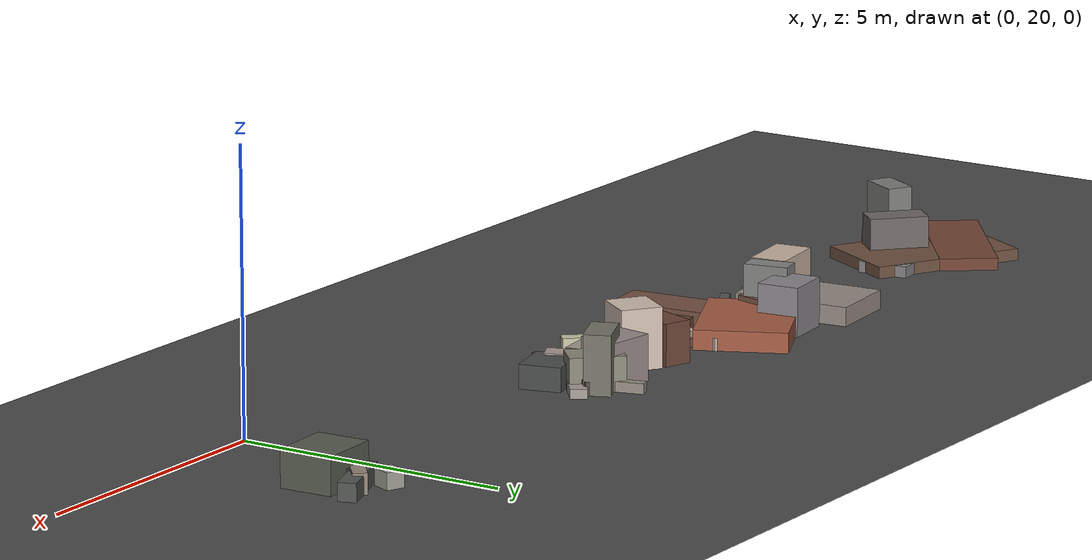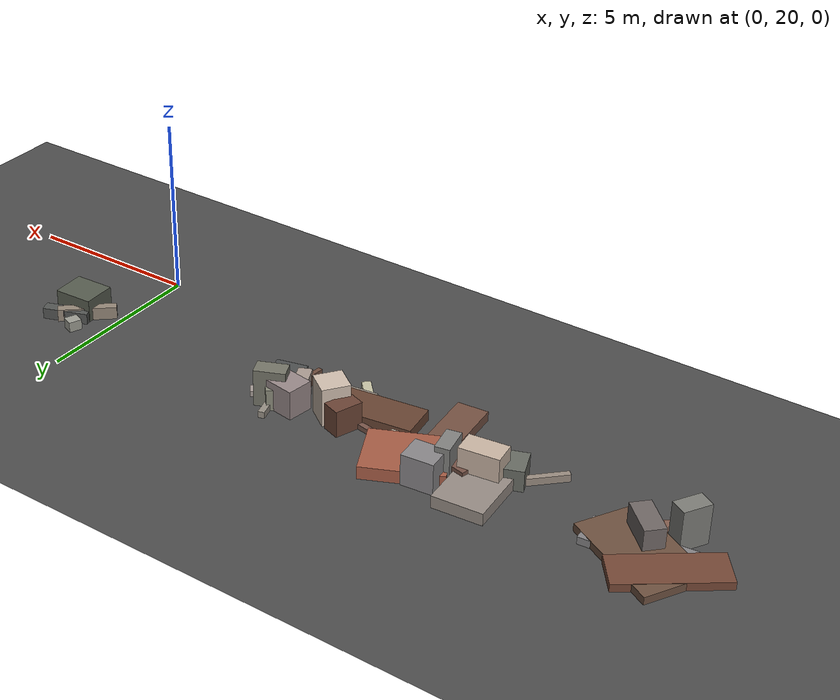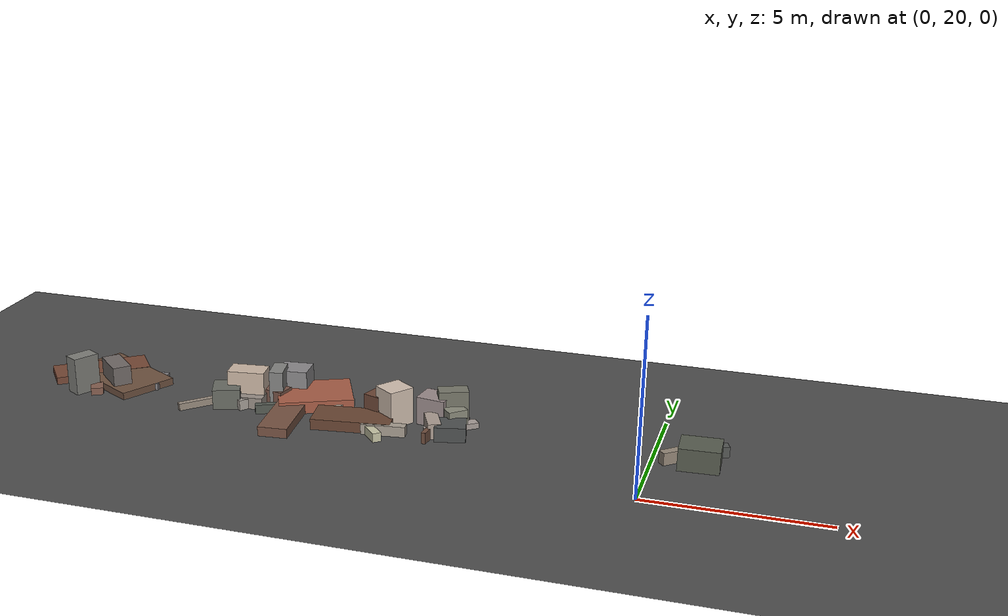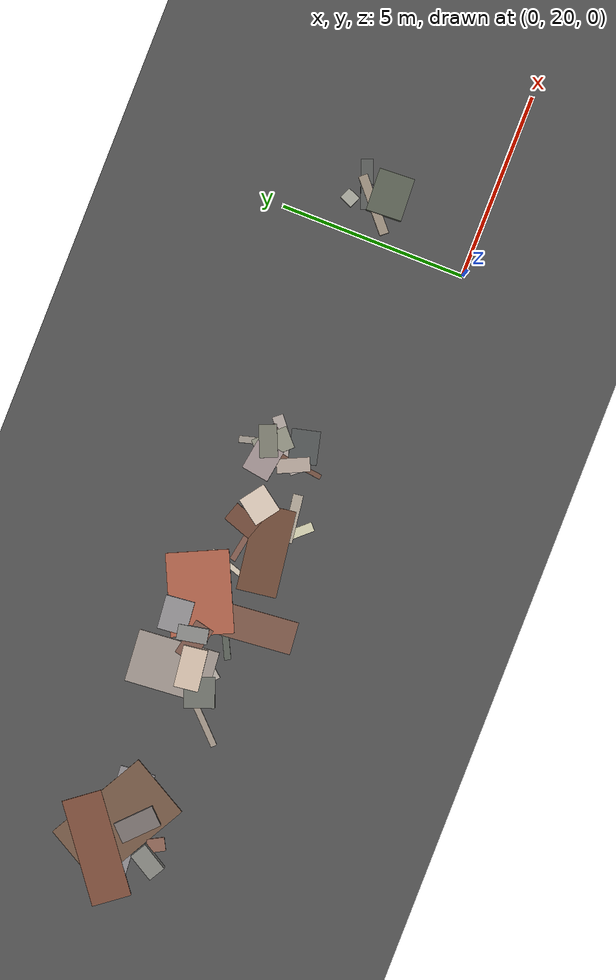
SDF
<sdf version="1.6">
 <world name="navitas_arena">
  <model name="ground_plane">
   <static>true</static>
   <link name="link">
    <collision name="collision">
     <geometry><plane><normal>0 0 1</normal><size>400 400</size></plane></geometry>
     <surface><friction><ode><mu>0.800</mu><mu2>0.800</mu2></ode></friction></surface>
    </collision>
    <visual name="visual">
     <cast_shadows>false</cast_shadows>
     <geometry><plane><normal>0 0 1</normal><size>400 400</size></plane></geometry>
     <material>
      <specular>0.04 0.04 0.04 1</specular>
      <script>
       <uri>file://media/materials/scripts/navitas_asphalt.material</uri>
       <name>Navitas/RealArenaAsphalt</name>
      </script>
     </material>
    </visual>
   </link>
  </model>
  <model name="deb_orta_61">
   <static>true</static>
   <pose>-16.905 22.829 0.000 0 0 0</pose>
   <link name="link">
    <collision name="col_0">
     <pose>-0.242 -0.727 0.566 0.000 0.000 -0.526</pose>
     <geometry><box><size>0.483 0.795 1.131</size></box></geometry>
    </collision>
    <visual name="vis_0">
     <pose>-0.242 -0.727 0.566 0.000 0.000 -0.526</pose>
     <geometry><box><size>0.483 0.795 1.131</size></box></geometry>
     <material>
      <ambient>0.45 0.45 0.43 1</ambient>
      <diffuse>0.49 0.49 0.47 1</diffuse>
      <specular>0.05 0.05 0.045 1</specular>
     </material>
    </visual>
    <collision name="col_1">
     <pose>0.409 0.390 0.108 0.000 0.000 -0.504</pose>
     <geometry><box><size>2.920 1.769 0.215</size></box></geometry>
    </collision>
    <visual name="vis_1">
     <pose>0.409 0.390 0.108 0.000 0.000 -0.504</pose>
     <geometry><box><size>2.920 1.769 0.215</size></box></geometry>
     <material>
      <ambient>0.40 0.30 0.24 1</ambient>
      <diffuse>0.43 0.32 0.25 1</diffuse>
      <specular>0.05 0.05 0.045 1</specular>
     </material>
    </visual>
    <collision name="col_2">
     <pose>0.378 0.253 0.104 0.000 0.000 0.080</pose>
     <geometry><box><size>2.951 0.940 0.208</size></box></geometry>
    </collision>
    <visual name="vis_2">
     <pose>0.378 0.253 0.104 0.000 0.000 0.080</pose>
     <geometry><box><size>2.951 0.940 0.208</size></box></geometry>
     <material>
      <ambient>0.48 0.47 0.48 1</ambient>
      <diffuse>0.52 0.51 0.52 1</diffuse>
      <specular>0.05 0.05 0.045 1</specular>
     </material>
    </visual>
    <collision name="col_3">
     <pose>0.208 -0.774 0.108 0.000 0.000 0.500</pose>
     <geometry><box><size>0.355 0.468 0.216</size></box></geometry>
    </collision>
    <visual name="vis_3">
     <pose>0.208 -0.774 0.108 0.000 0.000 0.500</pose>
     <geometry><box><size>0.355 0.468 0.216</size></box></geometry>
     <material>
      <ambient>0.48 0.34 0.29 1</ambient>
      <diffuse>0.52 0.37 0.31 1</diffuse>
      <specular>0.05 0.05 0.045 1</specular>
     </material>
    </visual>
    <collision name="col_4">
     <pose>-0.429 0.641 0.111 0.000 0.000 0.652</pose>
     <geometry><box><size>2.846 1.058 0.222</size></box></geometry>
    </collision>
    <visual name="vis_4">
     <pose>-0.429 0.641 0.111 0.000 0.000 0.652</pose>
     <geometry><box><size>2.846 1.058 0.222</size></box></geometry>
     <material>
      <ambient>0.43 0.26 0.19 1</ambient>
      <diffuse>0.46 0.28 0.21 1</diffuse>
      <specular>0.05 0.05 0.045 1</specular>
     </material>
    </visual>
    <collision name="col_5">
     <pose>0.552 -0.127 0.395 0.000 0.000 -0.765</pose>
     <geometry><box><size>1.095 0.554 0.790</size></box></geometry>
    </collision>
    <visual name="vis_5">
     <pose>0.552 -0.127 0.395 0.000 0.000 -0.765</pose>
     <geometry><box><size>1.095 0.554 0.790</size></box></geometry>
     <material>
      <ambient>0.41 0.38 0.37 1</ambient>
      <diffuse>0.44 0.41 0.40 1</diffuse>
      <specular>0.05 0.05 0.045 1</specular>
     </material>
    </visual>
   </link>
  </model>
  <model name="deb_orta_65">
   <static>true</static>
   <pose>-7.894 22.373 0.000 0 0 0</pose>
   <link name="link">
    <collision name="col_0">
     <pose>-0.116 0.642 0.380 0.000 0.000 2.809</pose>
     <geometry><box><size>0.522 0.803 0.759</size></box></geometry>
    </collision>
    <visual name="vis_0">
     <pose>-0.116 0.642 0.380 0.000 0.000 2.809</pose>
     <geometry><box><size>0.522 0.803 0.759</size></box></geometry>
     <material>
      <ambient>0.39 0.25 0.19 1</ambient>
      <diffuse>0.42 0.27 0.21 1</diffuse>
      <specular>0.05 0.05 0.045 1</specular>
     </material>
    </visual>
    <collision name="col_1">
     <pose>-0.011 -0.376 0.104 0.000 0.000 2.477</pose>
     <geometry><box><size>0.285 0.370 0.209</size></box></geometry>
    </collision>
    <visual name="vis_1">
     <pose>-0.011 -0.376 0.104 0.000 0.000 2.477</pose>
     <geometry><box><size>0.285 0.370 0.209</size></box></geometry>
     <material>
      <ambient>0.53 0.53 0.49 1</ambient>
      <diffuse>0.57 0.57 0.53 1</diffuse>
      <specular>0.05 0.05 0.045 1</specular>
     </material>
    </visual>
    <collision name="col_2">
     <pose>0.406 -0.543 0.154 0.000 0.000 3.275</pose>
     <geometry><box><size>1.274 0.270 0.307</size></box></geometry>
    </collision>
    <visual name="vis_2">
     <pose>0.406 -0.543 0.154 0.000 0.000 3.275</pose>
     <geometry><box><size>1.274 0.270 0.307</size></box></geometry>
     <material>
      <ambient>0.60 0.56 0.51 1</ambient>
      <diffuse>0.65 0.61 0.56 1</diffuse>
      <specular>0.05 0.05 0.045 1</specular>
     </material>
    </visual>
    <collision name="col_3">
     <pose>-0.615 -0.205 0.159 0.000 0.000 3.279</pose>
     <geometry><box><size>2.307 1.064 0.317</size></box></geometry>
    </collision>
    <visual name="vis_3">
     <pose>-0.615 -0.205 0.159 0.000 0.000 3.279</pose>
     <geometry><box><size>2.307 1.064 0.317</size></box></geometry>
     <material>
      <ambient>0.38 0.25 0.18 1</ambient>
      <diffuse>0.41 0.27 0.20 1</diffuse>
      <specular>0.05 0.05 0.045 1</specular>
     </material>
    </visual>
    <collision name="col_4">
     <pose>-0.248 0.364 0.073 0.000 0.000 2.965</pose>
     <geometry><box><size>1.869 0.160 0.146</size></box></geometry>
    </collision>
    <visual name="vis_4">
     <pose>-0.248 0.364 0.073 0.000 0.000 2.965</pose>
     <geometry><box><size>1.869 0.160 0.146</size></box></geometry>
     <material>
      <ambient>0.45 0.31 0.27 1</ambient>
      <diffuse>0.48 0.34 0.29 1</diffuse>
      <specular>0.05 0.05 0.045 1</specular>
     </material>
    </visual>
    <collision name="col_5">
     <pose>-0.152 -0.496 0.134 0.000 0.000 2.307</pose>
     <geometry><box><size>1.655 0.247 0.268</size></box></geometry>
    </collision>
    <visual name="vis_5">
     <pose>-0.152 -0.496 0.134 0.000 0.000 2.307</pose>
     <geometry><box><size>1.655 0.247 0.268</size></box></geometry>
     <material>
      <ambient>0.73 0.72 0.61 1</ambient>
      <diffuse>0.78 0.77 0.65 1</diffuse>
      <specular>0.05 0.05 0.045 1</specular>
     </material>
    </visual>
    <collision name="col_6">
     <pose>0.426 0.382 0.543 0.000 0.000 2.516</pose>
     <geometry><box><size>0.753 0.788 1.087</size></box></geometry>
    </collision>
    <visual name="vis_6">
     <pose>0.426 0.382 0.543 0.000 0.000 2.516</pose>
     <geometry><box><size>0.753 0.788 1.087</size></box></geometry>
     <material>
      <ambient>0.76 0.70 0.64 1</ambient>
      <diffuse>0.82 0.75 0.69 1</diffuse>
      <specular>0.05 0.05 0.045 1</specular>
     </material>
    </visual>
   </link>
  </model>
  <model name="deb_orta_122">
   <static>true</static>
   <pose>-5.844 22.735 0.000 0 0 0</pose>
   <link name="link">
    <collision name="col_0">
     <pose>0.090 -0.065 0.085 0.000 0.000 0.679</pose>
     <geometry><box><size>1.591 0.301 0.170</size></box></geometry>
    </collision>
    <visual name="vis_0">
     <pose>0.090 -0.065 0.085 0.000 0.000 0.679</pose>
     <geometry><box><size>1.591 0.301 0.170</size></box></geometry>
     <material>
      <ambient>0.60 0.56 0.55 1</ambient>
      <diffuse>0.65 0.61 0.59 1</diffuse>
      <specular>0.05 0.05 0.045 1</specular>
     </material>
    </visual>
    <collision name="col_1">
     <pose>0.314 0.329 0.121 0.000 0.000 0.918</pose>
     <geometry><box><size>0.391 0.182 0.242</size></box></geometry>
    </collision>
    <visual name="vis_1">
     <pose>0.314 0.329 0.121 0.000 0.000 0.918</pose>
     <geometry><box><size>0.391 0.182 0.242</size></box></geometry>
     <material>
      <ambient>0.32 0.27 0.27 1</ambient>
      <diffuse>0.35 0.30 0.29 1</diffuse>
      <specular>0.05 0.05 0.045 1</specular>
     </material>
    </visual>
    <collision name="col_2">
     <pose>-0.275 -0.347 0.167 0.000 0.000 1.448</pose>
     <geometry><box><size>1.707 0.131 0.334</size></box></geometry>
    </collision>
    <visual name="vis_2">
     <pose>-0.275 -0.347 0.167 0.000 0.000 1.448</pose>
     <geometry><box><size>1.707 0.131 0.334</size></box></geometry>
     <material>
      <ambient>0.40 0.27 0.22 1</ambient>
      <diffuse>0.43 0.30 0.24 1</diffuse>
      <specular>0.05 0.05 0.045 1</specular>
     </material>
    </visual>
    <collision name="col_3">
     <pose>-0.019 0.276 0.309 0.000 0.000 0.751</pose>
     <geometry><box><size>0.597 0.978 0.617</size></box></geometry>
    </collision>
    <visual name="vis_3">
     <pose>-0.019 0.276 0.309 0.000 0.000 0.751</pose>
     <geometry><box><size>0.597 0.978 0.617</size></box></geometry>
     <material>
      <ambient>0.50 0.50 0.45 1</ambient>
      <diffuse>0.54 0.54 0.48 1</diffuse>
      <specular>0.05 0.05 0.045 1</specular>
     </material>
    </visual>
    <collision name="col_4">
     <pose>-0.348 -0.418 0.230 0.000 0.000 2.004</pose>
     <geometry><box><size>0.878 0.378 0.459</size></box></geometry>
    </collision>
    <visual name="vis_4">
     <pose>-0.348 -0.418 0.230 0.000 0.000 2.004</pose>
     <geometry><box><size>0.878 0.378 0.459</size></box></geometry>
     <material>
      <ambient>0.62 0.57 0.52 1</ambient>
      <diffuse>0.67 0.61 0.57 1</diffuse>
      <specular>0.05 0.05 0.045 1</specular>
     </material>
    </visual>
    <collision name="col_5">
     <pose>-0.004 0.366 0.092 0.000 0.000 1.836</pose>
     <geometry><box><size>1.633 0.178 0.185</size></box></geometry>
    </collision>
    <visual name="vis_5">
     <pose>-0.004 0.366 0.092 0.000 0.000 1.836</pose>
     <geometry><box><size>1.633 0.178 0.185</size></box></geometry>
     <material>
      <ambient>0.54 0.52 0.48 1</ambient>
      <diffuse>0.59 0.56 0.52 1</diffuse>
      <specular>0.05 0.05 0.045 1</specular>
     </material>
    </visual>
    <collision name="col_6">
     <pose>0.001 0.416 0.530 0.000 0.000 1.980</pose>
     <geometry><box><size>0.476 0.860 1.061</size></box></geometry>
    </collision>
    <visual name="vis_6">
     <pose>0.001 0.416 0.530 0.000 0.000 1.980</pose>
     <geometry><box><size>0.476 0.860 1.061</size></box></geometry>
     <material>
      <ambient>0.43 0.43 0.38 1</ambient>
      <diffuse>0.46 0.46 0.41 1</diffuse>
      <specular>0.05 0.05 0.045 1</specular>
     </material>
    </visual>
   </link>
  </model>
  <model name="deb_orta_156">
   <static>true</static>
   <pose>-12.500 22.664 0.000 0 0 0</pose>
   <link name="link">
    <collision name="col_0">
     <pose>-0.088 0.073 0.149 0.000 0.000 1.611</pose>
     <geometry><box><size>0.389 0.293 0.299</size></box></geometry>
    </collision>
    <visual name="vis_0">
     <pose>-0.088 0.073 0.149 0.000 0.000 1.611</pose>
     <geometry><box><size>0.389 0.293 0.299</size></box></geometry>
     <material>
      <ambient>0.74 0.69 0.59 1</ambient>
      <diffuse>0.80 0.74 0.63 1</diffuse>
      <specular>0.05 0.05 0.045 1</specular>
     </material>
    </visual>
    <collision name="col_1">
     <pose>0.288 0.692 0.173 0.000 0.000 1.654</pose>
     <geometry><box><size>2.167 1.388 0.347</size></box></geometry>
    </collision>
    <visual name="vis_1">
     <pose>0.288 0.692 0.173 0.000 0.000 1.654</pose>
     <geometry><box><size>2.167 1.388 0.347</size></box></geometry>
     <material>
      <ambient>0.55 0.51 0.48 1</ambient>
      <diffuse>0.59 0.55 0.52 1</diffuse>
      <specular>0.05 0.05 0.045 1</specular>
     </material>
    </visual>
    <collision name="col_2">
     <pose>-0.655 -0.473 0.105 0.000 0.000 3.933</pose>
     <geometry><box><size>1.694 0.164 0.209</size></box></geometry>
    </collision>
    <visual name="vis_2">
     <pose>-0.655 -0.473 0.105 0.000 0.000 3.933</pose>
     <geometry><box><size>1.694 0.164 0.209</size></box></geometry>
     <material>
      <ambient>0.56 0.51 0.47 1</ambient>
      <diffuse>0.60 0.55 0.50 1</diffuse>
      <specular>0.05 0.05 0.045 1</specular>
     </material>
    </visual>
    <collision name="col_3">
     <pose>0.435 0.217 0.509 0.000 0.000 3.269</pose>
     <geometry><box><size>1.102 0.652 1.017</size></box></geometry>
    </collision>
    <visual name="vis_3">
     <pose>0.435 0.217 0.509 0.000 0.000 3.269</pose>
     <geometry><box><size>1.102 0.652 1.017</size></box></geometry>
     <material>
      <ambient>0.73 0.65 0.59 1</ambient>
      <diffuse>0.79 0.71 0.64 1</diffuse>
      <specular>0.05 0.05 0.045 1</specular>
     </material>
    </visual>
    <collision name="col_4">
     <pose>-0.080 -0.215 0.298 0.000 0.000 1.930</pose>
     <geometry><box><size>0.816 0.809 0.596</size></box></geometry>
    </collision>
    <visual name="vis_4">
     <pose>-0.080 -0.215 0.298 0.000 0.000 1.930</pose>
     <geometry><box><size>0.816 0.809 0.596</size></box></geometry>
     <material>
      <ambient>0.38 0.39 0.36 1</ambient>
      <diffuse>0.41 0.42 0.39 1</diffuse>
      <specular>0.05 0.05 0.045 1</specular>
     </material>
    </visual>
    <collision name="col_5">
     <pose>-0.304 -0.101 0.067 0.000 0.000 1.895</pose>
     <geometry><box><size>0.301 0.254 0.134</size></box></geometry>
    </collision>
    <visual name="vis_5">
     <pose>-0.304 -0.101 0.067 0.000 0.000 1.895</pose>
     <geometry><box><size>0.301 0.254 0.134</size></box></geometry>
     <material>
      <ambient>0.62 0.35 0.23 1</ambient>
      <diffuse>0.67 0.38 0.25 1</diffuse>
      <specular>0.05 0.05 0.045 1</specular>
     </material>
    </visual>
    <collision name="col_6">
     <pose>0.529 -0.319 0.154 0.000 0.000 2.442</pose>
     <geometry><box><size>0.247 0.474 0.308</size></box></geometry>
    </collision>
    <visual name="vis_6">
     <pose>0.529 -0.319 0.154 0.000 0.000 2.442</pose>
     <geometry><box><size>0.247 0.474 0.308</size></box></geometry>
     <material>
      <ambient>0.61 0.58 0.56 1</ambient>
      <diffuse>0.66 0.63 0.60 1</diffuse>
      <specular>0.05 0.05 0.045 1</specular>
     </material>
    </visual>
   </link>
  </model>
  <model name="deb_orta_157">
   <static>true</static>
   <pose>-6.030 22.411 0.000 0 0 0</pose>
   <link name="link">
    <collision name="col_0">
     <pose>-0.317 0.690 0.416 0.000 0.000 2.990</pose>
     <geometry><box><size>0.864 0.748 0.832</size></box></geometry>
    </collision>
    <visual name="vis_0">
     <pose>-0.317 0.690 0.416 0.000 0.000 2.990</pose>
     <geometry><box><size>0.864 0.748 0.832</size></box></geometry>
     <material>
      <ambient>0.55 0.50 0.50 1</ambient>
      <diffuse>0.60 0.54 0.54 1</diffuse>
      <specular>0.05 0.05 0.045 1</specular>
     </material>
    </visual>
    <collision name="col_1">
     <pose>0.099 0.025 0.134 0.000 0.000 1.945</pose>
     <geometry><box><size>0.230 0.413 0.268</size></box></geometry>
    </collision>
    <visual name="vis_1">
     <pose>0.099 0.025 0.134 0.000 0.000 1.945</pose>
     <geometry><box><size>0.230 0.413 0.268</size></box></geometry>
     <material>
      <ambient>0.58 0.57 0.54 1</ambient>
      <diffuse>0.62 0.61 0.58 1</diffuse>
      <specular>0.05 0.05 0.045 1</specular>
     </material>
    </visual>
    <collision name="col_2">
     <pose>0.176 0.521 0.074 0.000 0.000 2.150</pose>
     <geometry><box><size>0.449 0.201 0.149</size></box></geometry>
    </collision>
    <visual name="vis_2">
     <pose>0.176 0.521 0.074 0.000 0.000 2.150</pose>
     <geometry><box><size>0.449 0.201 0.149</size></box></geometry>
     <material>
      <ambient>0.74 0.67 0.59 1</ambient>
      <diffuse>0.80 0.72 0.64 1</diffuse>
      <specular>0.05 0.05 0.045 1</specular>
     </material>
    </visual>
    <collision name="col_3">
     <pose>0.390 -0.185 0.215 0.000 0.000 1.811</pose>
     <geometry><box><size>0.753 0.885 0.431</size></box></geometry>
    </collision>
    <visual name="vis_3">
     <pose>0.390 -0.185 0.215 0.000 0.000 1.811</pose>
     <geometry><box><size>0.753 0.885 0.431</size></box></geometry>
     <material>
      <ambient>0.28 0.29 0.29 1</ambient>
      <diffuse>0.30 0.31 0.31 1</diffuse>
      <specular>0.05 0.05 0.045 1</specular>
     </material>
    </visual>
   </link>
  </model>
  <model name="deb_orta_198">
   <static>true</static>
   <pose>-10.283 22.713 0.000 0 0 0</pose>
   <link name="link">
    <collision name="col_0">
     <pose>-0.636 -0.335 0.138 0.000 0.000 3.608</pose>
     <geometry><box><size>1.361 0.175 0.276</size></box></geometry>
    </collision>
    <visual name="vis_0">
     <pose>-0.636 -0.335 0.138 0.000 0.000 3.608</pose>
     <geometry><box><size>1.361 0.175 0.276</size></box></geometry>
     <material>
      <ambient>0.31 0.33 0.29 1</ambient>
      <diffuse>0.33 0.35 0.32 1</diffuse>
      <specular>0.05 0.05 0.045 1</specular>
     </material>
    </visual>
    <collision name="col_1">
     <pose>0.110 0.663 0.182 0.000 0.000 3.578</pose>
     <geometry><box><size>2.192 1.662 0.364</size></box></geometry>
    </collision>
    <visual name="vis_1">
     <pose>0.110 0.663 0.182 0.000 0.000 3.578</pose>
     <geometry><box><size>2.192 1.662 0.364</size></box></geometry>
     <material>
      <ambient>0.61 0.34 0.25 1</ambient>
      <diffuse>0.65 0.36 0.27 1</diffuse>
      <specular>0.05 0.05 0.045 1</specular>
     </material>
    </visual>
    <collision name="col_2">
     <pose>-0.638 1.028 0.443 0.000 0.000 3.241</pose>
     <geometry><box><size>0.893 0.770 0.886</size></box></geometry>
    </collision>
    <visual name="vis_2">
     <pose>-0.638 1.028 0.443 0.000 0.000 3.241</pose>
     <geometry><box><size>0.893 0.770 0.886</size></box></geometry>
     <material>
      <ambient>0.50 0.50 0.50 1</ambient>
      <diffuse>0.54 0.53 0.54 1</diffuse>
      <specular>0.05 0.05 0.045 1</specular>
     </material>
    </visual>
    <collision name="col_3">
     <pose>-1.109 0.341 0.228 0.000 0.000 1.348</pose>
     <geometry><box><size>0.538 0.994 0.456</size></box></geometry>
    </collision>
    <visual name="vis_3">
     <pose>-1.109 0.341 0.228 0.000 0.000 1.348</pose>
     <geometry><box><size>0.538 0.994 0.456</size></box></geometry>
     <material>
      <ambient>0.43 0.31 0.26 1</ambient>
      <diffuse>0.47 0.33 0.28 1</diffuse>
      <specular>0.05 0.05 0.045 1</specular>
     </material>
    </visual>
    <collision name="col_4">
     <pose>1.074 0.225 0.113 0.000 0.000 1.245</pose>
     <geometry><box><size>1.151 0.141 0.227</size></box></geometry>
    </collision>
    <visual name="vis_4">
     <pose>1.074 0.225 0.113 0.000 0.000 1.245</pose>
     <geometry><box><size>1.151 0.141 0.227</size></box></geometry>
     <material>
      <ambient>0.73 0.68 0.62 1</ambient>
      <diffuse>0.79 0.74 0.67 1</diffuse>
      <specular>0.05 0.05 0.045 1</specular>
     </material>
    </visual>
    <collision name="col_5">
     <pose>-0.220 -0.844 0.140 0.000 0.000 1.664</pose>
     <geometry><box><size>2.445 0.862 0.281</size></box></geometry>
    </collision>
    <visual name="vis_5">
     <pose>-0.220 -0.844 0.140 0.000 0.000 1.664</pose>
     <geometry><box><size>2.445 0.862 0.281</size></box></geometry>
     <material>
      <ambient>0.43 0.30 0.24 1</ambient>
      <diffuse>0.46 0.32 0.26 1</diffuse>
      <specular>0.05 0.05 0.045 1</specular>
     </material>
    </visual>
    <collision name="col_6">
     <pose>-0.938 0.446 0.521 0.000 0.000 1.762</pose>
     <geometry><box><size>0.806 0.406 1.042</size></box></geometry>
    </collision>
    <visual name="vis_6">
     <pose>-0.938 0.446 0.521 0.000 0.000 1.762</pose>
     <geometry><box><size>0.806 0.406 1.042</size></box></geometry>
     <material>
      <ambient>0.48 0.47 0.46 1</ambient>
      <diffuse>0.51 0.51 0.50 1</diffuse>
      <specular>0.05 0.05 0.045 1</specular>
     </material>
    </visual>
   </link>
  </model>
  <model name="deb_orta_235">
   <static>true</static>
   <pose>1.093 23.128 0.000 0 0 0</pose>
   <link name="link">
    <collision name="col_0">
     <pose>0.224 0.059 0.159 0.000 0.000 0.355</pose>
     <geometry><box><size>1.305 0.318 0.318</size></box></geometry>
    </collision>
    <visual name="vis_0">
     <pose>0.224 0.059 0.159 0.000 0.000 0.355</pose>
     <geometry><box><size>1.305 0.318 0.318</size></box></geometry>
     <material>
      <ambient>0.31 0.31 0.31 1</ambient>
      <diffuse>0.33 0.34 0.33 1</diffuse>
      <specular>0.05 0.05 0.045 1</specular>
     </material>
    </visual>
    <collision name="col_1">
     <pose>0.181 -0.610 0.326 0.000 0.000 0.049</pose>
     <geometry><box><size>1.136 0.954 0.652</size></box></geometry>
    </collision>
    <visual name="vis_1">
     <pose>0.181 -0.610 0.326 0.000 0.000 0.049</pose>
     <geometry><box><size>1.136 0.954 0.652</size></box></geometry>
     <material>
      <ambient>0.31 0.34 0.28 1</ambient>
      <diffuse>0.34 0.36 0.31 1</diffuse>
      <specular>0.05 0.05 0.045 1</specular>
     </material>
    </visual>
    <collision name="col_2">
     <pose>-0.212 -0.297 0.182 0.000 0.000 0.720</pose>
     <geometry><box><size>1.629 0.247 0.363</size></box></geometry>
    </collision>
    <visual name="vis_2">
     <pose>-0.212 -0.297 0.182 0.000 0.000 0.720</pose>
     <geometry><box><size>1.629 0.247 0.363</size></box></geometry>
     <material>
      <ambient>0.54 0.49 0.44 1</ambient>
      <diffuse>0.58 0.53 0.47 1</diffuse>
      <specular>0.05 0.05 0.045 1</specular>
     </material>
    </visual>
    <collision name="col_3">
     <pose>-0.261 0.341 0.148 0.000 0.000 -0.400</pose>
     <geometry><box><size>0.329 0.371 0.296</size></box></geometry>
    </collision>
    <visual name="vis_3">
     <pose>-0.261 0.341 0.148 0.000 0.000 -0.400</pose>
     <geometry><box><size>0.329 0.371 0.296</size></box></geometry>
     <material>
      <ambient>0.57 0.58 0.54 1</ambient>
      <diffuse>0.62 0.62 0.58 1</diffuse>
      <specular>0.05 0.05 0.045 1</specular>
     </material>
    </visual>
    <collision name="col_4">
     <pose>0.153 -0.359 0.172 0.000 0.000 1.400</pose>
     <geometry><box><size>1.173 0.128 0.344</size></box></geometry>
    </collision>
    <visual name="vis_4">
     <pose>0.153 -0.359 0.172 0.000 0.000 1.400</pose>
     <geometry><box><size>1.173 0.128 0.344</size></box></geometry>
     <material>
      <ambient>0.28 0.26 0.28 1</ambient>
      <diffuse>0.30 0.28 0.30 1</diffuse>
      <specular>0.05 0.05 0.045 1</specular>
     </material>
    </visual>
   </link>
  </model>
 </world>
</sdf>
